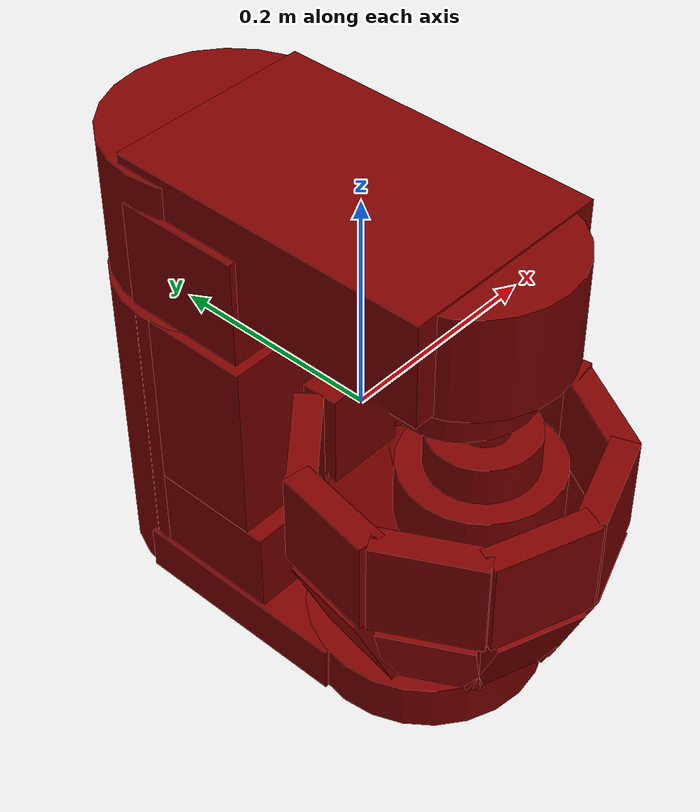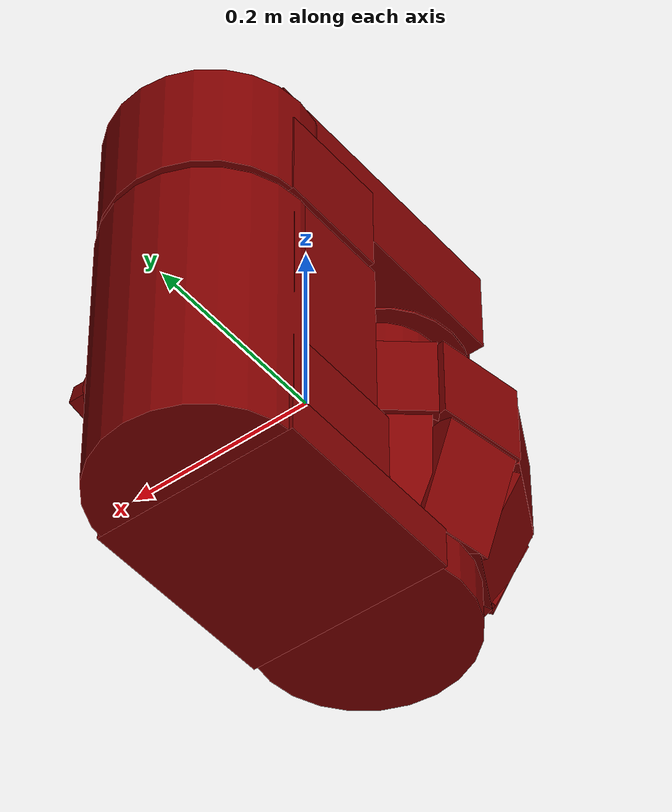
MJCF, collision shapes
<?xml version='1.0' encoding='UTF-8'?>
<mujoco model="model">
  <compiler angle="radian"/>
  <asset>
    <mesh file="visuals/Blender001.obj" name="Blender001_vis"/>
    <mesh file="visuals/Body001.obj" name="Body001_vis"/>
    <mesh file="visuals/Button001.obj" name="Button001_vis"/>
    <mesh file="visuals/Container001.obj" name="Container001_vis"/>
    <mesh file="visuals/Knob001.obj" name="Knob001_vis"/>
    <mesh file="visuals/Lid001.obj" name="Lid001_vis"/>
    <texture file="visuals/T_BC001.png" name="Body001_material" type="2d"/>
    <material name="Body001_material" rgba="1 1 1 1.0" texture="Body001_material" shininess="0.5" specular="0.3103448502657381"/>
    <texture file="visuals/T_BC001.png" name="Button001_material" type="2d"/>
    <material name="Button001_material" rgba="1 1 1 1.0" texture="Button001_material" shininess="0.5" specular="0.3103448502657381"/>
    <texture file="visuals/T_BC001.png" name="Container001_material" type="2d"/>
    <material name="Container001_material" rgba="1 1 1 1.0" texture="Container001_material" shininess="0.5" specular="0.3103448502657381"/>
    <texture file="visuals/T_BC001.png" name="Knob001_material" type="2d"/>
    <material name="Knob001_material" rgba="1 1 1 1.0" texture="Knob001_material" shininess="0.5" specular="0.3103448502657381"/>
    <texture file="visuals/T_BC001.png" name="Lid001_material" type="2d"/>
    <material name="Lid001_material" rgba="1 1 1 1.0" texture="Lid001_material" shininess="0.5" specular="0.3103448502657381"/>
    <texture file="visuals/T_BC001.png" name="Blender001_material" type="2d"/>
    <material name="Blender001_material" rgba="1 1 1 1.0" texture="Blender001_material" shininess="0.5" specular="0.3103448502657381"/>
  </asset>
  <default>
    <default class="visual">
      <geom conaffinity="0" contype="0" group="1" type="mesh"/>
    </default>
    <default class="collision">
      <geom group="0" rgba="0.5 0 0 0.5"/>
    </default>
    <default class="spawn">
      <geom group="0" rgba="1 1 1 0.5" contype="0" conaffinity="0"/>
      <site group="0" rgba="1 1 1 0.5"/>
    </default>
    <default class="region">
      <geom group="1" conaffinity="0" contype="0" rgba="0 1 0 0"/>
    </default>
  </default>
  <worldbody>
    <body>
      <body name="object">
        <geom mesh="Body001_vis" type="mesh" solimp="0.998 0.998 0.001" solref="0.001 1" density="100" friction="0.95 0.3 0.1" class="visual" material="Body001_material"/>
        <geom class="collision" type="cylinder" pos="-0.002132 -0.078801 -0.199174" size="0.10441090911626816 0.022463563829660416" quat="1.0 0.0 0.0 0.0"/>
        <geom class="collision" type="cylinder" pos="-0.002131 0.140288 -0.072972" size="0.10340665280818939 0.14866557717323303" quat="1.0 0.0 0.0 0.0"/>
        <geom class="collision" type="cylinder" pos="-0.002132 -0.104844 -0.166191" size="0.07603473216295242 0.009076155722141266" quat="1.0 0.0 0.0 0.0"/>
        <geom class="collision" type="box" pos="-0.002131 0.047581 -0.199496" size="0.10559983551502228 0.10542922466993332 0.022264186292886734" quat="1.0 0.0 0.0 0.0"/>
        <geom class="collision" type="box" pos="-0.002131 0.082576 -0.139250" size="0.10242745280265808 0.06562068313360214 0.04127616807818413" quat="1.0 0.0 0.0 0.0"/>
        <geom class="collision" type="box" pos="-0.002639 0.090516 -0.011420" size="0.10191963613033295 0.05768014118075371 0.08676526695489883" quat="1.0 0.0 0.0 0.0"/>
        <body name="Button001">
          <joint axis="-1.0 0.0 0.0" pos="0.108344 0.065975 -0.075553" limited="true" name="Button001_joint" range="0.0 0.005" type="slide" damping="1" frictionloss="1" armature=".01" stiffness="0.05"/>
          <geom mesh="Button001_vis" type="mesh" solimp="0.998 0.998 0.001" solref="0.001 1" density="100" friction="0.95 0.3 0.1" class="visual" material="Button001_material"/>
          <geom class="collision" type="cylinder" pos="0.110172 0.065975 -0.075552" size="0.015115930698812008 0.003514397656545043" quat="0.7071068286895752 -0.0 0.7071067690849304 0.0"/>
        </body>
        <body name="Container001">
          <joint axis="0.0 0.0 1.0" pos="-0.002132 -0.105461 -0.124109" limited="true" name="Container001_joint" range="0.0 0.05" type="slide" damping="1" frictionloss="1" armature=".01" stiffness="0.05"/>
          <geom mesh="Container001_vis" type="mesh" solimp="0.998 0.998 0.001" solref="0.001 1" density="100" friction="0.95 0.3 0.1" class="visual" material="Container001_material"/>
          <geom class="collision" type="box" pos="0.118682 -0.084638 -0.017984" size="0.012190205976366997 0.04628506302833557 0.044027213007211685" quat="0.9960408806800842 0.0 0.0 0.08889619261026382"/>
          <geom class="collision" type="box" pos="0.101806 -0.165469 -0.018859" size="0.012190205976366997 0.04628505930304527 0.044027213007211685" quat="0.9678325057029724 0.0 -0.0 -0.2515954077243805"/>
          <geom class="collision" type="box" pos="0.038917 -0.218240 -0.016284" size="0.012190206907689571 0.046285055577754974 0.044027213007211685" quat="0.8182713985443115 -2.679056088084053e-09 1.7841770283411051e-09 -0.5748320817947388"/>
          <geom class="collision" type="box" pos="-0.043866 -0.218926 -0.016284" size="0.012190206907689571 0.046285051852464676 0.044027213007211685" quat="0.5730414390563965 -1.9095476311292714e-09 2.5911883749785147e-09 -0.8195263743400574"/>
          <geom class="collision" type="box" pos="-0.106069 -0.165469 -0.016284" size="0.012190209701657295 0.04628506302833557 0.044027213007211685" quat="0.24354346096515656 -8.613289526060441e-10 3.1014095736026093e-09 -0.9698899984359741"/>
          <geom class="collision" type="box" pos="-0.122973 -0.083462 -0.016284" size="0.01219020877033472 0.04628506302833557 0.044027213007211685" quat="0.08091280609369278 -1.8055808237438242e-10 -3.2137266181564428e-09 0.9967212080955505"/>
          <geom class="collision" type="box" pos="-0.079277 -0.013523 -0.016284" size="0.012190209701657295 0.04628505930304527 0.044027213007211685" quat="0.4214891195297241 -1.283660289175259e-09 -2.951754840552212e-09 0.9068334698677063"/>
          <geom class="collision" type="box" pos="-0.002131 0.009691 -0.016284" size="0.03680093213915825 0.017169710248708725 0.044027213007211685" quat="1.0 0.0 0.0 0.0"/>
          <geom class="collision" type="box" pos="0.075014 -0.013523 -0.016284" size="0.012190205976366997 0.04628506675362587 0.044027213007211685" quat="0.9014719724655151 -2.8661004680685664e-09 -1.4649622626095038e-09 0.43283751606941223"/>
          <geom class="collision" type="box" pos="0.084691 -0.155926 -0.109185" size="0.013319350779056549 0.039754386991262436 0.05010315403342247" quat="0.9475469589233398 0.051241643726825714 0.19711539149284363 -0.24632203578948975"/>
          <geom class="collision" type="box" pos="0.032271 -0.199806 -0.106611" size="0.013319349847733974 0.03975437209010124 0.05010316148400307" quat="0.8011206388473511 0.11707421392202377 0.16665473580360413 -0.5627837777137756"/>
          <geom class="collision" type="box" pos="-0.037140 -0.200521 -0.106611" size="0.013319349847733974 0.03975438326597214 0.05010316148400307" quat="0.5610307455062866 0.1669103056192398 0.11670953780412674 -0.8023492693901062"/>
          <geom class="collision" type="box" pos="-0.088798 -0.156212 -0.106611" size="0.013319352641701698 0.03975437954068184 0.050103168934583664" quat="0.23843884468078613 0.19753442704677582 0.0496017187833786 -0.949561357498169"/>
          <geom class="collision" type="box" pos="-0.103635 -0.086622 -0.106611" size="0.013319351710379124 0.03975437581539154 0.05010315030813217" quat="0.07921700924634933 -0.20299912989139557 0.016479285433888435 0.9758301377296448"/>
          <geom class="collision" type="box" pos="-0.066644 -0.028502 -0.106611" size="0.013319352641701698 0.03975437209010124 0.05010314658284187" quat="0.4126547873020172 -0.18469198048114777 0.08584334701299667 0.8878264427185059"/>
          <geom class="collision" type="box" pos="-0.001423 -0.005027 -0.106611" size="0.013319350779056549 0.03975437954068184 0.050103165209293365" quat="0.6796635389328003 -0.14659297466278076 0.14138838648796082 0.7046824097633362"/>
          <geom class="collision" type="box" pos="0.062761 -0.028815 -0.106611" size="0.013319351710379124 0.03975438326597214 0.05010315775871277" quat="0.8825774788856506 -0.08815458416938782 0.18359996378421783 0.42376503348350525"/>
          <geom class="collision" type="box" pos="0.099397 -0.088108 -0.104736" size="0.013319351710379124 0.03975437581539154 0.052034009248018265" quat="0.9751641750335693 -0.01810520328581333 0.20286044478416443 0.08703292161226273"/>
        </body>
        <body name="Knob001">
          <joint axis="-1.0 0.0 0.0" pos="0.120626 0.121841 -0.039544" limited="true" name="Knob001_joint" range="0.0 3.455751918948773" type="hinge" damping="0.05" armature="0.001"/>
          <geom mesh="Knob001_vis" type="mesh" solimp="0.998 0.998 0.001" solref="0.001 1" density="100" friction="0.95 0.3 0.1" class="visual" material="Knob001_material"/>
          <geom class="collision" type="cylinder" pos="0.111754 0.122839 -0.039561" size="0.04446208477020264 0.005899335257709026" quat="0.7071068286895752 1.2101617485882343e-08 0.7071067690849304 -1.2101616597703924e-08"/>
          <geom class="collision" type="box" pos="0.125461 0.123774 -0.037498" size="0.012517601251602173 0.03671196103096008 0.012120201252400875" quat="0.994899570941925 0.10087060928344727 0.0 0.0"/>
        </body>
        <body name="Lid001">
          <joint axis="-1.0 0.0 0.0" pos="-0.002131 0.239259 0.073696" limited="true" name="Lid001_joint" range="0.0 1.5707963267948966" type="hinge" damping="1" frictionloss="1" armature=".01" stiffness="0.05"/>
          <geom mesh="Lid001_vis" type="mesh" solimp="0.998 0.998 0.001" solref="0.001 1" density="100" friction="0.95 0.3 0.1" class="visual" material="Lid001_material"/>
          <geom class="collision" type="cylinder" pos="-0.002132 0.140289 0.148870" size="0.10213780403137207 0.0630406066775322" quat="1.0 0.0 0.0 0.0"/>
          <geom class="collision" type="box" pos="-0.002131 0.091783 0.133907" size="0.10242745280265808 0.05768014118075371 0.048582036048173904" quat="1.0 0.0 0.0 0.0"/>
          <geom class="collision" type="box" pos="-0.002131 0.008315 0.173892" size="0.09657689929008484 0.14943094551563263 0.046632736921310425" quat="1.0 0.0 0.0 0.0"/>
          <geom class="collision" type="cylinder" pos="-0.002132 -0.108562 0.171794" size="0.08473727852106094 0.04690329730510712" quat="1.0 0.0 0.0 0.0"/>
          <geom class="collision" type="cylinder" pos="-0.002132 -0.103672 0.104790" size="0.06355025619268417 0.022438563406467438" quat="1.0 0.0 0.0 0.0"/>
          <body name="Blender001">
            <joint axis="0.0 0.0 1.0" pos="-0.002131 -0.128588 -0.015207" limited="false" name="Blender001_joint" range="0 360" type="hinge" damping="1" frictionloss="1" armature=".01" stiffness="0.05"/>
            <geom mesh="Blender001_vis" type="mesh" solimp="0.998 0.998 0.001" solref="0.001 1" density="100" friction="0.95 0.3 0.1" class="visual" material="Blender001_material"/>
            <geom class="collision" type="cylinder" pos="-0.004363 -0.129445 -0.006183" size="0.06798271089792252 0.02627846598625183" quat="1.0 0.0 0.0 0.0"/>
            <geom class="collision" type="cylinder" pos="-0.004363 -0.129445 -0.056383" size="0.04883493483066559 0.022687526419758797" quat="1.0 0.0 0.0 0.0"/>
            <geom class="collision" type="cylinder" pos="-0.004363 -0.129445 0.066306" size="0.021665161475539207 0.014338434673845768" quat="1.0 0.0 0.0 0.0"/>
            <geom class="collision" type="cylinder" pos="-0.004363 -0.129445 0.037031" size="0.046580854803323746 0.018005654215812683" quat="1.0 0.0 0.0 0.0"/>
          </body>
        </body>
        <geom class="region" name="reg_main" type="box" pos="-0.0021315000000000014 0.025681499999999996 0.0" size="0.10218050000000001 0.2160815 0.220245"/>
      </body>
    </body>
  </worldbody>
  <actuator>
    <motor name="Button001_joint_actuator" joint="Button001_joint" gear="0.5"/>
    <motor name="Container001_joint_actuator" joint="Container001_joint" gear="100"/>
    <motor name="Knob001_joint_actuator" joint="Knob001_joint" gear="10"/>
    <motor name="Lid001_joint_actuator" joint="Lid001_joint" gear="50"/>
    <motor name="Blender001_joint_actuator" joint="Blender001_joint" gear="10"/>
  </actuator>
</mujoco>
